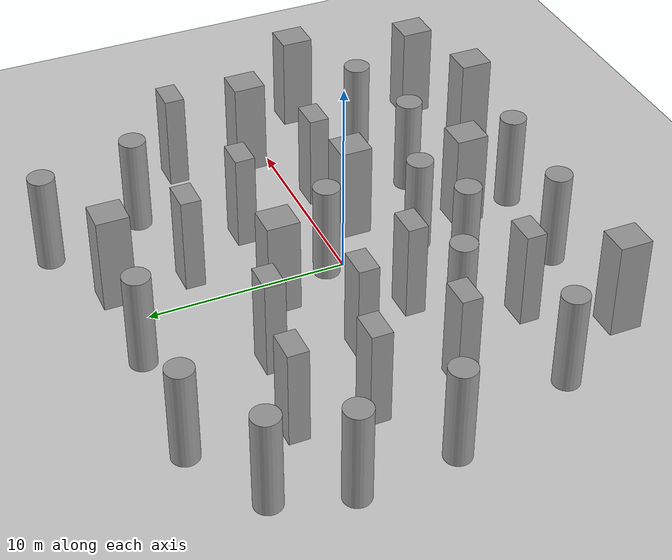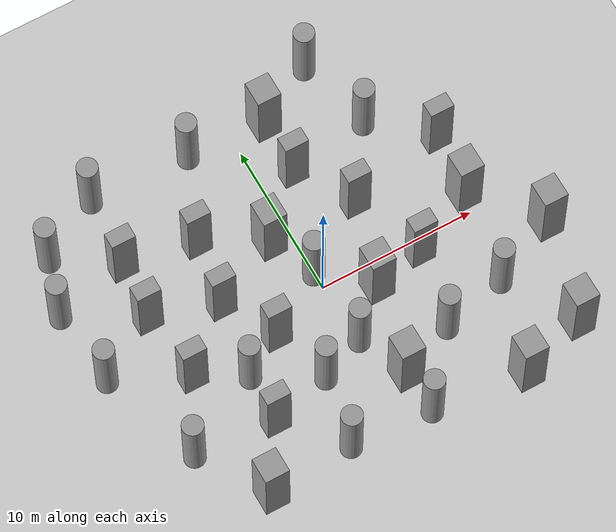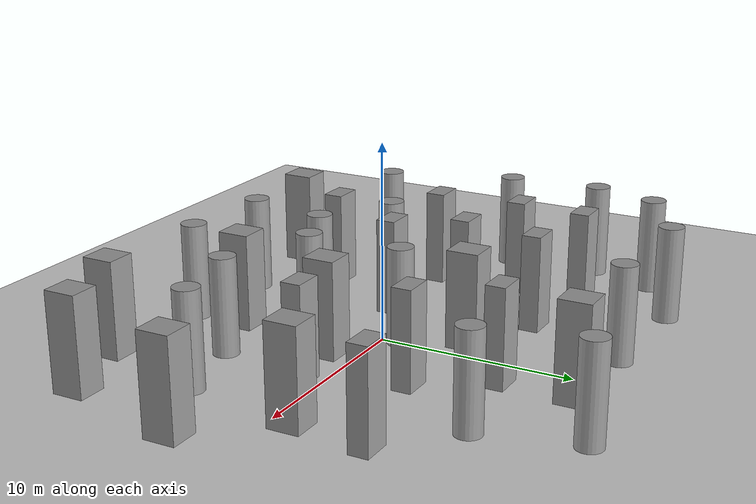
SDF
<sdf version="1.7">
 <world name="default">
  <light name="sun" type="directional">
   <pose>0 0 10 0 -0 0</pose>
   <diffuse>0.8 0.8 0.8 1</diffuse>
   <specular>0.2 0.2 0.2 1</specular>
   <attenuation>
    <range>1000</range>
    <constant>0.9</constant>
    <linear>0.01</linear>
    <quadratic>0.001</quadratic>
   </attenuation>
   <direction>-0.5 0.1 -0.9</direction>
   <spot><inner_angle>0</inner_angle><outer_angle>0</outer_angle><falloff>0</falloff></spot>
  </light>
  <model name="ground_plane">
   <static>1</static>
   <link name="link">
    <collision name="collision">
     <geometry><plane><normal>0 0 1</normal><size>100 100</size></plane></geometry>
     <surface>
      <contact><collide_bitmask>65535</collide_bitmask></contact>
      <friction><ode><mu>100</mu><mu2>50</mu2></ode></friction>
     </surface>
    </collision>
    <visual name="visual">
     <geometry><plane><normal>0 0 1</normal><size>100 100</size></plane></geometry>
     <material>
      <script><uri>file://media/materials/scripts/gazebo.material</uri><name>Gazebo/Grey</name></script>
     </material>
    </visual>
   </link>
  </model>
  <gravity>0 0 -9.8</gravity>
  <magnetic_field>6e-06 2.3e-05 -4.2e-05</magnetic_field>
  <atmosphere type="adiabatic"/>
  <physics type="ode">
   <max_step_size>0.001</max_step_size>
   <real_time_factor>1</real_time_factor>
   <real_time_update_rate>1000</real_time_update_rate>
  </physics>
  <scene><ambient>0.4 0.4 0.4 1</ambient><background>0.7 0.7 0.7 1</background><shadows>1</shadows></scene>
  <spherical_coordinates>
   <surface_model>EARTH_WGS84</surface_model>
   <latitude_deg>0</latitude_deg>
   <longitude_deg>0</longitude_deg>
   <elevation>0</elevation>
   <heading_deg>0</heading_deg>
  </spherical_coordinates>
  <model name="unit_box">
   <pose>-3.98644 -1.6027 2.5 0 -1e-06 -0.00012</pose>
   <link name="link">
    <inertial>
     <mass>0.1</mass>
     <inertia>
      <ixx>0.166667</ixx>
      <ixy>0</ixy>
      <ixz>0</ixz>
      <iyy>0.166667</iyy>
      <iyz>0</iyz>
      <izz>0.166667</izz>
     </inertia>
    </inertial>
    <collision name="collision"><geometry><box><size>1.54092 1 5</size></box></geometry></collision>
    <visual name="visual">
     <geometry><box><size>1.54092 1 5</size></box></geometry>
     <material>
      <script><name>Gazebo/Grey</name><uri>file://media/materials/scripts/gazebo.material</uri></script>
     </material>
    </visual>
   </link>
  </model>
  <model name="unit_cylinder">
   <pose>-0.096647 0.93126 2.5 0 -0 -0.000712</pose>
   <link name="link">
    <inertial>
     <mass>0.1</mass>
     <inertia><ixx>0.145833</ixx><ixy>0</ixy><ixz>0</ixz><iyy>0.145833</iyy><iyz>0</iyz><izz>0.125</izz></inertia>
    </inertial>
    <collision name="collision">
     <geometry><cylinder><radius>0.66506</radius><length>5</length></cylinder></geometry>
    </collision>
    <visual name="visual">
     <geometry><cylinder><radius>0.66506</radius><length>5</length></cylinder></geometry>
     <material>
      <script><name>Gazebo/Grey</name><uri>file://media/materials/scripts/gazebo.material</uri></script>
     </material>
    </visual>
   </link>
  </model>
  <model name="unit_box_clone">
   <pose>-5.83362 1.69205 2.5 -1e-06 1e-06 -0.00031</pose>
   <link name="link">
    <inertial>
     <mass>0.1</mass>
     <inertia>
      <ixx>0.166667</ixx>
      <ixy>0</ixy>
      <ixz>0</ixz>
      <iyy>0.166667</iyy>
      <iyz>0</iyz>
      <izz>0.166667</izz>
     </inertia>
    </inertial>
    <collision name="collision"><geometry><box><size>1.54092 1 5</size></box></geometry></collision>
    <visual name="visual">
     <geometry><box><size>1.54092 1 5</size></box></geometry>
     <material>
      <script><name>Gazebo/Grey</name><uri>file://media/materials/scripts/gazebo.material</uri></script>
     </material>
    </visual>
   </link>
  </model>
  <model name="unit_box_clone_0">
   <pose>-5.18643 5.88582 2.5 -0 -1e-06 -0.000781</pose>
   <link name="link">
    <inertial>
     <mass>0.1</mass>
     <inertia>
      <ixx>0.166667</ixx>
      <ixy>0</ixy>
      <ixz>0</ixz>
      <iyy>0.166667</iyy>
      <iyz>0</iyz>
      <izz>0.166667</izz>
     </inertia>
    </inertial>
    <collision name="collision"><geometry><box><size>1.54092 1 5</size></box></geometry></collision>
    <visual name="visual">
     <geometry><box><size>1.54092 1 5</size></box></geometry>
     <material>
      <script><name>Gazebo/Grey</name><uri>file://media/materials/scripts/gazebo.material</uri></script>
     </material>
    </visual>
   </link>
  </model>
  <model name="unit_box_clone_1">
   <pose>2.02638 7.17537 2.5 0 -1e-06 -0.002002</pose>
   <link name="link">
    <inertial>
     <mass>0.1</mass>
     <inertia>
      <ixx>0.166667</ixx>
      <ixy>0</ixy>
      <ixz>0</ixz>
      <iyy>0.166667</iyy>
      <iyz>0</iyz>
      <izz>0.166667</izz>
     </inertia>
    </inertial>
    <collision name="collision"><geometry><box><size>1.54092 1 5</size></box></geometry></collision>
    <visual name="visual">
     <geometry><box><size>1.54092 1 5</size></box></geometry>
     <material>
      <script><name>Gazebo/Grey</name><uri>file://media/materials/scripts/gazebo.material</uri></script>
     </material>
    </visual>
   </link>
  </model>
  <model name="unit_box_clone_2">
   <pose>4.23249 3.63532 2.5 -1e-06 1e-06 -0.001697</pose>
   <link name="link">
    <inertial>
     <mass>0.1</mass>
     <inertia>
      <ixx>0.166667</ixx>
      <ixy>0</ixy>
      <ixz>0</ixz>
      <iyy>0.166667</iyy>
      <iyz>0</iyz>
      <izz>0.166667</izz>
     </inertia>
    </inertial>
    <collision name="collision"><geometry><box><size>1.54092 1 5</size></box></geometry></collision>
    <visual name="visual">
     <geometry><box><size>1.54092 1 5</size></box></geometry>
     <material>
      <script><name>Gazebo/Grey</name><uri>file://media/materials/scripts/gazebo.material</uri></script>
     </material>
    </visual>
   </link>
  </model>
  <model name="unit_box_clone_3">
   <pose>5.99993 -0.999986 2.5 -1e-06 -1e-06 0.000514</pose>
   <link name="link">
    <inertial>
     <mass>0.1</mass>
     <inertia>
      <ixx>0.166667</ixx>
      <ixy>0</ixy>
      <ixz>0</ixz>
      <iyy>0.166667</iyy>
      <iyz>0</iyz>
      <izz>0.166667</izz>
     </inertia>
    </inertial>
    <collision name="collision"><geometry><box><size>1.54092 1 5</size></box></geometry></collision>
    <visual name="visual">
     <geometry><box><size>1.54092 1 5</size></box></geometry>
     <material>
      <script><name>Gazebo/Grey</name><uri>file://media/materials/scripts/gazebo.material</uri></script>
     </material>
    </visual>
   </link>
  </model>
  <model name="unit_box_clone_5">
   <pose>-9.47531 -1.49857 2.5 0 1e-06 0.000193</pose>
   <link name="link">
    <inertial>
     <mass>0.1</mass>
     <inertia>
      <ixx>0.166667</ixx>
      <ixy>0</ixy>
      <ixz>0</ixz>
      <iyy>0.166667</iyy>
      <iyz>0</iyz>
      <izz>0.166667</izz>
     </inertia>
    </inertial>
    <collision name="collision"><geometry><box><size>1.54092 1 5</size></box></geometry></collision>
    <visual name="visual">
     <geometry><box><size>1.54092 1 5</size></box></geometry>
     <material>
      <script><name>Gazebo/Grey</name><uri>file://media/materials/scripts/gazebo.material</uri></script>
     </material>
    </visual>
   </link>
  </model>
  <model name="unit_box_clone_6">
   <pose>-10.0001 3.00044 2.5 -1e-06 -1e-06 -0.001106</pose>
   <link name="link">
    <inertial>
     <mass>0.1</mass>
     <inertia>
      <ixx>0.166667</ixx>
      <ixy>0</ixy>
      <ixz>0</ixz>
      <iyy>0.166667</iyy>
      <iyz>0</iyz>
      <izz>0.166667</izz>
     </inertia>
    </inertial>
    <collision name="collision"><geometry><box><size>1.54092 1 5</size></box></geometry></collision>
    <visual name="visual">
     <geometry><box><size>1.54092 1 5</size></box></geometry>
     <material>
      <script><name>Gazebo/Grey</name><uri>file://media/materials/scripts/gazebo.material</uri></script>
     </material>
    </visual>
   </link>
  </model>
  <model name="unit_box_clone_7">
   <pose>-9.68924 6.68024 2.5 0 1e-06 0.000689</pose>
   <link name="link">
    <inertial>
     <mass>0.1</mass>
     <inertia>
      <ixx>0.166667</ixx>
      <ixy>0</ixy>
      <ixz>0</ixz>
      <iyy>0.166667</iyy>
      <iyz>0</iyz>
      <izz>0.166667</izz>
     </inertia>
    </inertial>
    <collision name="collision"><geometry><box><size>1.54092 1 5</size></box></geometry></collision>
    <visual name="visual">
     <geometry><box><size>1.54092 1 5</size></box></geometry>
     <material>
      <script><name>Gazebo/Grey</name><uri>file://media/materials/scripts/gazebo.material</uri></script>
     </material>
    </visual>
   </link>
  </model>
  <model name="unit_box_clone_8">
   <pose>10.56 5.00033 2.5 -1e-06 1e-06 -0.001124</pose>
   <link name="link">
    <inertial>
     <mass>0.1</mass>
     <inertia>
      <ixx>0.166667</ixx>
      <ixy>0</ixy>
      <ixz>0</ixz>
      <iyy>0.166667</iyy>
      <iyz>0</iyz>
      <izz>0.166667</izz>
     </inertia>
    </inertial>
    <collision name="collision"><geometry><box><size>1.54092 1 5</size></box></geometry></collision>
    <visual name="visual">
     <geometry><box><size>1.54092 1 5</size></box></geometry>
     <material>
      <script><name>Gazebo/Grey</name><uri>file://media/materials/scripts/gazebo.material</uri></script>
     </material>
    </visual>
   </link>
  </model>
  <model name="unit_cylinder_clone">
   <pose>0.140782 -4.06445 2.49999 -0 -0 -0.000727</pose>
   <link name="link">
    <inertial>
     <mass>0.1</mass>
     <inertia><ixx>0.145833</ixx><ixy>0</ixy><ixz>0</ixz><iyy>0.145833</iyy><iyz>0</iyz><izz>0.125</izz></inertia>
    </inertial>
    <collision name="collision">
     <geometry><cylinder><radius>0.66506</radius><length>5</length></cylinder></geometry>
    </collision>
    <visual name="visual">
     <geometry><cylinder><radius>0.66506</radius><length>5</length></cylinder></geometry>
     <material>
      <script><name>Gazebo/Grey</name><uri>file://media/materials/scripts/gazebo.material</uri></script>
     </material>
    </visual>
   </link>
  </model>
  <model name="unit_cylinder_clone_0">
   <pose>-6.5088 -2.99987 2.49999 -0 -0 -0.00075</pose>
   <link name="link">
    <inertial>
     <mass>0.1</mass>
     <inertia><ixx>0.145833</ixx><ixy>0</ixy><ixz>0</ixz><iyy>0.145833</iyy><iyz>0</iyz><izz>0.125</izz></inertia>
    </inertial>
    <collision name="collision">
     <geometry><cylinder><radius>0.66506</radius><length>5</length></cylinder></geometry>
    </collision>
    <visual name="visual">
     <geometry><cylinder><radius>0.66506</radius><length>5</length></cylinder></geometry>
     <material>
      <script><name>Gazebo/Grey</name><uri>file://media/materials/scripts/gazebo.material</uri></script>
     </material>
    </visual>
   </link>
  </model>
  <model name="unit_cylinder_clone_1">
   <pose>9.24295 -4.8514 2.5 0 -0 0.000128</pose>
   <link name="link">
    <inertial>
     <mass>0.1</mass>
     <inertia><ixx>0.145833</ixx><ixy>0</ixy><ixz>0</ixz><iyy>0.145833</iyy><iyz>0</iyz><izz>0.125</izz></inertia>
    </inertial>
    <collision name="collision">
     <geometry><cylinder><radius>0.66506</radius><length>5</length></cylinder></geometry>
    </collision>
    <visual name="visual">
     <geometry><cylinder><radius>0.66506</radius><length>5</length></cylinder></geometry>
     <material>
      <script><name>Gazebo/Grey</name><uri>file://media/materials/scripts/gazebo.material</uri></script>
     </material>
    </visual>
   </link>
  </model>
  <model name="unit_cylinder_clone_2">
   <pose>5.03669 -5.85151 2.5 0 -0 -0.000749</pose>
   <link name="link">
    <inertial>
     <mass>0.1</mass>
     <inertia><ixx>0.145833</ixx><ixy>0</ixy><ixz>0</ixz><iyy>0.145833</iyy><iyz>0</iyz><izz>0.125</izz></inertia>
    </inertial>
    <collision name="collision">
     <geometry><cylinder><radius>0.66506</radius><length>5</length></cylinder></geometry>
    </collision>
    <visual name="visual">
     <geometry><cylinder><radius>0.66506</radius><length>5</length></cylinder></geometry>
     <material>
      <script><name>Gazebo/Grey</name><uri>file://media/materials/scripts/gazebo.material</uri></script>
     </material>
    </visual>
   </link>
  </model>
  <model name="unit_cylinder_clone_3">
   <pose>-2.90357 11.1984 2.49999 -0 -0 -0.000747</pose>
   <link name="link">
    <inertial>
     <mass>0.1</mass>
     <inertia><ixx>0.145833</ixx><ixy>0</ixy><ixz>0</ixz><iyy>0.145833</iyy><iyz>0</iyz><izz>0.125</izz></inertia>
    </inertial>
    <collision name="collision">
     <geometry><cylinder><radius>0.66506</radius><length>5</length></cylinder></geometry>
    </collision>
    <visual name="visual">
     <geometry><cylinder><radius>0.66506</radius><length>5</length></cylinder></geometry>
     <material>
      <script><name>Gazebo/Grey</name><uri>file://media/materials/scripts/gazebo.material</uri></script>
     </material>
    </visual>
   </link>
  </model>
  <model name="unit_cylinder_clone_4">
   <pose>6.00011 13.0001 2.49999 -0 -0 -0.00075</pose>
   <link name="link">
    <inertial>
     <mass>0.1</mass>
     <inertia><ixx>0.145833</ixx><ixy>0</ixy><ixz>0</ixz><iyy>0.145833</iyy><iyz>0</iyz><izz>0.125</izz></inertia>
    </inertial>
    <collision name="collision">
     <geometry><cylinder><radius>0.66506</radius><length>5</length></cylinder></geometry>
    </collision>
    <visual name="visual">
     <geometry><cylinder><radius>0.66506</radius><length>5</length></cylinder></geometry>
     <material>
      <script><name>Gazebo/Grey</name><uri>file://media/materials/scripts/gazebo.material</uri></script>
     </material>
    </visual>
   </link>
  </model>
  <model name="unit_cylinder_clone_5">
   <pose>7.28332 8.06923 2.49999 -0 -0 -0.000748</pose>
   <link name="link">
    <inertial>
     <mass>0.1</mass>
     <inertia><ixx>0.145833</ixx><ixy>0</ixy><ixz>0</ixz><iyy>0.145833</iyy><iyz>0</iyz><izz>0.125</izz></inertia>
    </inertial>
    <collision name="collision">
     <geometry><cylinder><radius>0.66506</radius><length>5</length></cylinder></geometry>
    </collision>
    <visual name="visual">
     <geometry><cylinder><radius>0.66506</radius><length>5</length></cylinder></geometry>
     <material>
      <script><name>Gazebo/Grey</name><uri>file://media/materials/scripts/gazebo.material</uri></script>
     </material>
    </visual>
   </link>
  </model>
  <model name="unit_cylinder_clone_6">
   <pose>-9.29991 11.4447 2.5 0 -0 0.000125</pose>
   <link name="link">
    <inertial>
     <mass>0.1</mass>
     <inertia><ixx>0.145833</ixx><ixy>0</ixy><ixz>0</ixz><iyy>0.145833</iyy><iyz>0</iyz><izz>0.125</izz></inertia>
    </inertial>
    <collision name="collision">
     <geometry><cylinder><radius>0.66506</radius><length>5</length></cylinder></geometry>
    </collision>
    <visual name="visual">
     <geometry><cylinder><radius>0.66506</radius><length>5</length></cylinder></geometry>
     <material>
      <script><name>Gazebo/Grey</name><uri>file://media/materials/scripts/gazebo.material</uri></script>
     </material>
    </visual>
   </link>
  </model>
  <model name="unit_cylinder_clone_7">
   <pose>-13.8777 0.842312 2.5 0 -0 0.000116</pose>
   <link name="link">
    <inertial>
     <mass>0.1</mass>
     <inertia><ixx>0.145833</ixx><ixy>0</ixy><ixz>0</ixz><iyy>0.145833</iyy><iyz>0</iyz><izz>0.125</izz></inertia>
    </inertial>
    <collision name="collision">
     <geometry><cylinder><radius>0.66506</radius><length>5</length></cylinder></geometry>
    </collision>
    <visual name="visual">
     <geometry><cylinder><radius>0.66506</radius><length>5</length></cylinder></geometry>
     <material>
      <script><name>Gazebo/Grey</name><uri>file://media/materials/scripts/gazebo.material</uri></script>
     </material>
    </visual>
   </link>
  </model>
  <model name="unit_cylinder_clone_8">
   <pose>-14.3504 5.73838 2.5 0 -0 -0.000752</pose>
   <link name="link">
    <inertial>
     <mass>0.1</mass>
     <inertia><ixx>0.145833</ixx><ixy>0</ixy><ixz>0</ixz><iyy>0.145833</iyy><iyz>0</iyz><izz>0.125</izz></inertia>
    </inertial>
    <collision name="collision">
     <geometry><cylinder><radius>0.66506</radius><length>5</length></cylinder></geometry>
    </collision>
    <visual name="visual">
     <geometry><cylinder><radius>0.66506</radius><length>5</length></cylinder></geometry>
     <material>
      <script><name>Gazebo/Grey</name><uri>file://media/materials/scripts/gazebo.material</uri></script>
     </material>
    </visual>
   </link>
  </model>
  <model name="unit_cylinder_clone_9">
   <pose>-13.2541 9.24987 2.49999 -0 -0 -0.00075</pose>
   <link name="link">
    <inertial>
     <mass>0.1</mass>
     <inertia><ixx>0.145833</ixx><ixy>0</ixy><ixz>0</ixz><iyy>0.145833</iyy><iyz>0</iyz><izz>0.125</izz></inertia>
    </inertial>
    <collision name="collision">
     <geometry><cylinder><radius>0.66506</radius><length>5</length></cylinder></geometry>
    </collision>
    <visual name="visual">
     <geometry><cylinder><radius>0.66506</radius><length>5</length></cylinder></geometry>
     <material>
      <script><name>Gazebo/Grey</name><uri>file://media/materials/scripts/gazebo.material</uri></script>
     </material>
    </visual>
   </link>
  </model>
  <model name="unit_cylinder_clone_10">
   <pose>-3.52746 -9.60064 2.5 0 -0 0.000157</pose>
   <link name="link">
    <inertial>
     <mass>0.1</mass>
     <inertia><ixx>0.145833</ixx><ixy>0</ixy><ixz>0</ixz><iyy>0.145833</iyy><iyz>0</iyz><izz>0.125</izz></inertia>
    </inertial>
    <collision name="collision">
     <geometry><cylinder><radius>0.66506</radius><length>5</length></cylinder></geometry>
    </collision>
    <visual name="visual">
     <geometry><cylinder><radius>0.66506</radius><length>5</length></cylinder></geometry>
     <material>
      <script><name>Gazebo/Grey</name><uri>file://media/materials/scripts/gazebo.material</uri></script>
     </material>
    </visual>
   </link>
  </model>
  <model name="unit_cylinder_clone_11">
   <pose>1.64736 -9.97218 2.49999 -0 -0 -0.000757</pose>
   <link name="link">
    <inertial>
     <mass>0.1</mass>
     <inertia><ixx>0.145833</ixx><ixy>0</ixy><ixz>0</ixz><iyy>0.145833</iyy><iyz>0</iyz><izz>0.125</izz></inertia>
    </inertial>
    <collision name="collision">
     <geometry><cylinder><radius>0.66506</radius><length>5</length></cylinder></geometry>
    </collision>
    <visual name="visual">
     <geometry><cylinder><radius>0.66506</radius><length>5</length></cylinder></geometry>
     <material>
      <script><name>Gazebo/Grey</name><uri>file://media/materials/scripts/gazebo.material</uri></script>
     </material>
    </visual>
   </link>
  </model>
  <model name="unit_cylinder_clone_12">
   <pose>-2.71086 -5.18066 2.49999 -0 -0 -0.000758</pose>
   <link name="link">
    <inertial>
     <mass>0.1</mass>
     <inertia><ixx>0.145833</ixx><ixy>0</ixy><ixz>0</ixz><iyy>0.145833</iyy><iyz>0</iyz><izz>0.125</izz></inertia>
    </inertial>
    <collision name="collision">
     <geometry><cylinder><radius>0.66506</radius><length>5</length></cylinder></geometry>
    </collision>
    <visual name="visual">
     <geometry><cylinder><radius>0.66506</radius><length>5</length></cylinder></geometry>
     <material>
      <script><name>Gazebo/Grey</name><uri>file://media/materials/scripts/gazebo.material</uri></script>
     </material>
    </visual>
   </link>
  </model>
  <model name="unit_cylinder_clone_13">
   <pose>-11.6694 -5.72601 2.5 0 -0 0.000153</pose>
   <link name="link">
    <inertial>
     <mass>0.1</mass>
     <inertia><ixx>0.145833</ixx><ixy>0</ixy><ixz>0</ixz><iyy>0.145833</iyy><iyz>0</iyz><izz>0.125</izz></inertia>
    </inertial>
    <collision name="collision">
     <geometry><cylinder><radius>0.66506</radius><length>5</length></cylinder></geometry>
    </collision>
    <visual name="visual">
     <geometry><cylinder><radius>0.66506</radius><length>5</length></cylinder></geometry>
     <material>
      <script><name>Gazebo/Grey</name><uri>file://media/materials/scripts/gazebo.material</uri></script>
     </material>
    </visual>
   </link>
  </model>
  <model name="unit_box_clone_4_clone">
   <pose>7.56609 -10.6468 2.5 -1e-06 -0 -0.000792</pose>
   <link name="link">
    <inertial>
     <mass>0.1</mass>
     <inertia>
      <ixx>0.166667</ixx>
      <ixy>0</ixy>
      <ixz>0</ixz>
      <iyy>0.166667</iyy>
      <iyz>0</iyz>
      <izz>0.166667</izz>
     </inertia>
    </inertial>
    <collision name="collision"><geometry><box><size>1.54092 1.6222 5</size></box></geometry></collision>
    <visual name="visual">
     <geometry><box><size>1.54092 1.6222 5</size></box></geometry>
     <material>
      <script><name>Gazebo/Grey</name><uri>file://media/materials/scripts/gazebo.material</uri></script>
     </material>
    </visual>
   </link>
  </model>
  <model name="unit_box_clone_4_clone_0">
   <pose>1.44341 -7.22803 2.5 0 0 -9.6e-05</pose>
   <link name="link">
    <inertial>
     <mass>0.1</mass>
     <inertia>
      <ixx>0.166667</ixx>
      <ixy>0</ixy>
      <ixz>0</ixz>
      <iyy>0.166667</iyy>
      <iyz>0</iyz>
      <izz>0.166667</izz>
     </inertia>
    </inertial>
    <collision name="collision"><geometry><box><size>1.54092 1.6222 5</size></box></geometry></collision>
    <visual name="visual">
     <geometry><box><size>1.54092 1.6222 5</size></box></geometry>
     <material>
      <script><name>Gazebo/Grey</name><uri>file://media/materials/scripts/gazebo.material</uri></script>
     </material>
    </visual>
   </link>
  </model>
  <model name="unit_box_clone_4_clone_1">
   <pose>2.73256 -1.56588 2.5 0 0 -9.8e-05</pose>
   <link name="link">
    <inertial>
     <mass>0.1</mass>
     <inertia>
      <ixx>0.166667</ixx>
      <ixy>0</ixy>
      <ixz>0</ixz>
      <iyy>0.166667</iyy>
      <iyz>0</iyz>
      <izz>0.166667</izz>
     </inertia>
    </inertial>
    <collision name="collision"><geometry><box><size>1.54092 1.6222 5</size></box></geometry></collision>
    <visual name="visual">
     <geometry><box><size>1.54092 1.6222 5</size></box></geometry>
     <material>
      <script><name>Gazebo/Grey</name><uri>file://media/materials/scripts/gazebo.material</uri></script>
     </material>
    </visual>
   </link>
  </model>
  <model name="unit_box_clone_4_clone_2">
   <pose>-1.3896 3.93442 2.5 1e-06 -0 0.00114</pose>
   <link name="link">
    <inertial>
     <mass>0.1</mass>
     <inertia>
      <ixx>0.166667</ixx>
      <ixy>0</ixy>
      <ixz>0</ixz>
      <iyy>0.166667</iyy>
      <iyz>0</iyz>
      <izz>0.166667</izz>
     </inertia>
    </inertial>
    <collision name="collision"><geometry><box><size>1.54092 1.6222 5</size></box></geometry></collision>
    <visual name="visual">
     <geometry><box><size>1.54092 1.6222 5</size></box></geometry>
     <material>
      <script><name>Gazebo/Grey</name><uri>file://media/materials/scripts/gazebo.material</uri></script>
     </material>
    </visual>
   </link>
  </model>
  <model name="unit_box_clone_4_clone_3">
   <pose>10.1486 1.09054 2.5 0 -0 0.001132</pose>
   <link name="link">
    <inertial>
     <mass>0.1</mass>
     <inertia>
      <ixx>0.166667</ixx>
      <ixy>0</ixy>
      <ixz>0</ixz>
      <iyy>0.166667</iyy>
      <iyz>0</iyz>
      <izz>0.166667</izz>
     </inertia>
    </inertial>
    <collision name="collision"><geometry><box><size>1.54092 1.6222 5</size></box></geometry></collision>
    <visual name="visual">
     <geometry><box><size>1.54092 1.6222 5</size></box></geometry>
     <material>
      <script><name>Gazebo/Grey</name><uri>file://media/materials/scripts/gazebo.material</uri></script>
     </material>
    </visual>
   </link>
  </model>
  <model name="unit_box_clone_4_clone_4">
   <pose>13.435 -2.91877 2.5 -0 -0 -0.000338</pose>
   <link name="link">
    <inertial>
     <mass>0.1</mass>
     <inertia>
      <ixx>0.166667</ixx>
      <ixy>0</ixy>
      <ixz>0</ixz>
      <iyy>0.166667</iyy>
      <iyz>0</iyz>
      <izz>0.166667</izz>
     </inertia>
    </inertial>
    <collision name="collision"><geometry><box><size>1.54092 1.6222 5</size></box></geometry></collision>
    <visual name="visual">
     <geometry><box><size>1.54092 1.6222 5</size></box></geometry>
     <material>
      <script><name>Gazebo/Grey</name><uri>file://media/materials/scripts/gazebo.material</uri></script>
     </material>
    </visual>
   </link>
  </model>
  <model name="unit_box_clone_4_clone_5">
   <pose>11.7698 -9.26183 2.5 1e-06 -0 0.000786</pose>
   <link name="link">
    <inertial>
     <mass>0.1</mass>
     <inertia>
      <ixx>0.166667</ixx>
      <ixy>0</ixy>
      <ixz>0</ixz>
      <iyy>0.166667</iyy>
      <iyz>0</iyz>
      <izz>0.166667</izz>
     </inertia>
    </inertial>
    <collision name="collision"><geometry><box><size>1.54092 1.6222 5</size></box></geometry></collision>
    <visual name="visual">
     <geometry><box><size>1.54092 1.6222 5</size></box></geometry>
     <material>
      <script><name>Gazebo/Grey</name><uri>file://media/materials/scripts/gazebo.material</uri></script>
     </material>
    </visual>
   </link>
  </model>
  <model name="unit_box_clone_4_clone_5_clone">
   <pose>-9.00043 -10.0002 2.5 -1e-06 -0 -0.000786</pose>
   <link name="link">
    <inertial>
     <mass>0.1</mass>
     <inertia>
      <ixx>0.166667</ixx>
      <ixy>0</ixy>
      <ixz>0</ixz>
      <iyy>0.166667</iyy>
      <iyz>0</iyz>
      <izz>0.166667</izz>
     </inertia>
    </inertial>
    <collision name="collision"><geometry><box><size>1.54092 1.6222 5</size></box></geometry></collision>
    <visual name="visual">
     <geometry><box><size>1.54092 1.6222 5</size></box></geometry>
     <material>
      <script><name>Gazebo/Grey</name><uri>file://media/materials/scripts/gazebo.material</uri></script>
     </material>
    </visual>
   </link>
  </model>
  <model name="unit_box_clone_4_clone_5_clone_0">
   <pose>2.09282 10.9229 2.5 -1e-06 -0 -0.000785</pose>
   <link name="link">
    <inertial>
     <mass>0.1</mass>
     <inertia>
      <ixx>0.166667</ixx>
      <ixy>0</ixy>
      <ixz>0</ixz>
      <iyy>0.166667</iyy>
      <iyz>0</iyz>
      <izz>0.166667</izz>
     </inertia>
    </inertial>
    <collision name="collision"><geometry><box><size>1.54092 1.6222 5</size></box></geometry></collision>
    <visual name="visual">
     <geometry><box><size>1.54092 1.6222 5</size></box></geometry>
     <material>
      <script><name>Gazebo/Grey</name><uri>file://media/materials/scripts/gazebo.material</uri></script>
     </material>
    </visual>
   </link>
  </model>
  <model name="unit_box_clone_9">
   <pose>-6.6299 -6.24728 2.5 0 -1e-06 0.000345</pose>
   <link name="link">
    <inertial>
     <mass>0.1</mass>
     <inertia>
      <ixx>0.166667</ixx>
      <ixy>0</ixy>
      <ixz>0</ixz>
      <iyy>0.166667</iyy>
      <iyz>0</iyz>
      <izz>0.166667</izz>
     </inertia>
    </inertial>
    <collision name="collision"><geometry><box><size>1.54092 1 5</size></box></geometry></collision>
    <visual name="visual">
     <geometry><box><size>1.54092 1 5</size></box></geometry>
     <material>
      <script><name>Gazebo/Grey</name><uri>file://media/materials/scripts/gazebo.material</uri></script>
     </material>
    </visual>
   </link>
  </model>
 </world>
</sdf>
